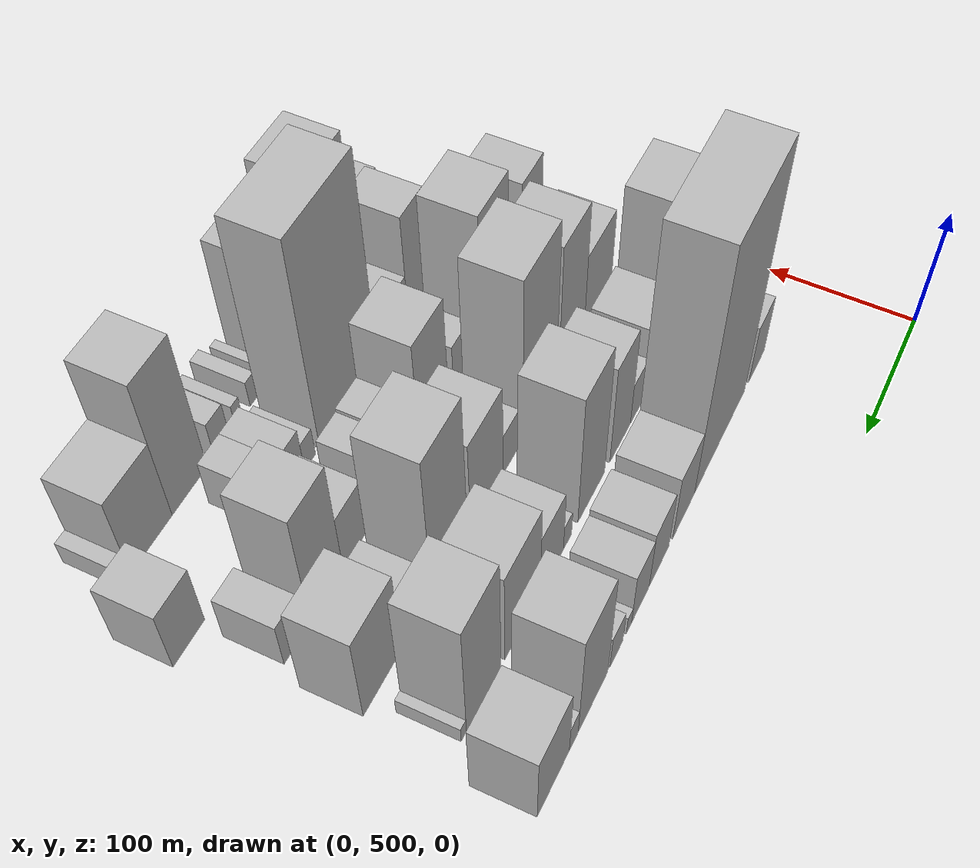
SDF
<sdf version="1.6">
 <world name="default">
  <model name="building_40">
   <static>1</static>
   <pose>100.0000 580.8331 0 0.000000 0.000000 0.000000</pose>
   <link name="link">
    <pose>0 0 27.00 0 0 0</pose>
    <collision name="collision"><geometry><box><size>40.0000 28.0786 54.0000</size></box></geometry></collision>
    <visual name="visual">
     <cast_shadows>0</cast_shadows>
     <geometry><box><size>40.0000 28.0786 54.0000</size></box></geometry>
     <material>
      <script>
       <uri>model://HANNAS_wall/materials/scripts</uri>
       <uri>model://HANNAS_wall/materials/textures</uri>
       <name>vrc/HANNAS_wall</name>
      </script>
     </material>
    </visual>
   </link>
  </model>
  <model name="building_41">
   <static>1</static>
   <pose>100.0000 645.3778 0 0.000000 0.000000 0.000000</pose>
   <link name="link">
    <pose>0 0 111.00 0 0 0</pose>
    <collision name="collision"><geometry><box><size>40.0000 85.0107 222.0000</size></box></geometry></collision>
    <visual name="visual">
     <cast_shadows>0</cast_shadows>
     <geometry><box><size>40.0000 85.0107 222.0000</size></box></geometry>
     <material>
      <script>
       <uri>model://HANNAS_wall/materials/scripts</uri>
       <uri>model://HANNAS_wall/materials/textures</uri>
       <name>vrc/HANNAS_wall</name>
      </script>
     </material>
    </visual>
   </link>
  </model>
  <model name="building_42">
   <static>1</static>
   <pose>100.0000 705.2268 0 0.000000 0.000000 0.000000</pose>
   <link name="link">
    <pose>0 0 31.50 0 0 0</pose>
    <collision name="collision"><geometry><box><size>40.0000 34.6874 63.0000</size></box></geometry></collision>
    <visual name="visual">
     <cast_shadows>0</cast_shadows>
     <geometry><box><size>40.0000 34.6874 63.0000</size></box></geometry>
     <material>
      <script>
       <uri>model://HANNAS_wall/materials/scripts</uri>
       <uri>model://HANNAS_wall/materials/textures</uri>
       <name>vrc/HANNAS_wall</name>
      </script>
     </material>
    </visual>
   </link>
  </model>
  <model name="building_43">
   <static>1</static>
   <pose>100.0000 743.5656 0 0.000000 0.000000 0.000000</pose>
   <link name="link">
    <pose>0 0 28.50 0 0 0</pose>
    <collision name="collision"><geometry><box><size>40.0000 29.9901 57.0000</size></box></geometry></collision>
    <visual name="visual">
     <cast_shadows>0</cast_shadows>
     <geometry><box><size>40.0000 29.9901 57.0000</size></box></geometry>
     <material>
      <script>
       <uri>model://HANNAS_wall/materials/scripts</uri>
       <uri>model://HANNAS_wall/materials/textures</uri>
       <name>vrc/HANNAS_wall</name>
      </script>
     </material>
    </visual>
   </link>
  </model>
  <model name="building_44">
   <static>1</static>
   <pose>100.0000 771.5494 0 0.000000 0.000000 0.000000</pose>
   <link name="link">
    <pose>0 0 25.50 0 0 0</pose>
    <collision name="collision"><geometry><box><size>40.0000 25.9776 51.0000</size></box></geometry></collision>
    <visual name="visual">
     <cast_shadows>0</cast_shadows>
     <geometry><box><size>40.0000 25.9776 51.0000</size></box></geometry>
     <material>
      <script>
       <uri>model://HANNAS_wall/materials/scripts</uri>
       <uri>model://HANNAS_wall/materials/textures</uri>
       <name>vrc/HANNAS_wall</name>
      </script>
     </material>
    </visual>
   </link>
  </model>
  <model name="building_45">
   <static>1</static>
   <pose>100.0000 788.2415 0 0.000000 0.000000 0.000000</pose>
   <link name="link">
    <pose>0 0 9.00 0 0 0</pose>
    <collision name="collision"><geometry><box><size>40.0000 7.4066 18.0000</size></box></geometry></collision>
    <visual name="visual">
     <cast_shadows>0</cast_shadows>
     <geometry><box><size>40.0000 7.4066 18.0000</size></box></geometry>
     <material>
      <script>
       <uri>model://HANNAS_wall/materials/scripts</uri>
       <uri>model://HANNAS_wall/materials/textures</uri>
       <name>vrc/HANNAS_wall</name>
      </script>
     </material>
    </visual>
   </link>
  </model>
  <model name="building_46">
   <static>1</static>
   <pose>100.0000 806.1011 0 0.000000 0.000000 0.000000</pose>
   <link name="link">
    <pose>0 0 16.50 0 0 0</pose>
    <collision name="collision"><geometry><box><size>40.0000 18.3126 33.0000</size></box></geometry></collision>
    <visual name="visual">
     <cast_shadows>0</cast_shadows>
     <geometry><box><size>40.0000 18.3126 33.0000</size></box></geometry>
     <material>
      <script>
       <uri>model://HANNAS_wall/materials/scripts</uri>
       <uri>model://HANNAS_wall/materials/textures</uri>
       <name>vrc/HANNAS_wall</name>
      </script>
     </material>
    </visual>
   </link>
  </model>
  <model name="building_47">
   <static>1</static>
   <pose>100.0000 838.3187 0 0.000000 0.000000 0.000000</pose>
   <link name="link">
    <pose>0 0 52.50 0 0 0</pose>
    <collision name="collision"><geometry><box><size>40.0000 40.1227 105.0000</size></box></geometry></collision>
    <visual name="visual">
     <cast_shadows>0</cast_shadows>
     <geometry><box><size>40.0000 40.1227 105.0000</size></box></geometry>
     <material>
      <script>
       <uri>model://HANNAS_wall/materials/scripts</uri>
       <uri>model://HANNAS_wall/materials/textures</uri>
       <name>vrc/HANNAS_wall</name>
      </script>
     </material>
    </visual>
   </link>
  </model>
  <model name="building_48">
   <static>1</static>
   <pose>100.0000 864.2418 0 0.000000 0.000000 0.000000</pose>
   <link name="link">
    <pose>0 0 13.50 0 0 0</pose>
    <collision name="collision"><geometry><box><size>40.0000 11.7236 27.0000</size></box></geometry></collision>
    <visual name="visual">
     <cast_shadows>0</cast_shadows>
     <geometry><box><size>40.0000 11.7236 27.0000</size></box></geometry>
     <material>
      <script>
       <uri>model://HANNAS_wall/materials/scripts</uri>
       <uri>model://HANNAS_wall/materials/textures</uri>
       <name>vrc/HANNAS_wall</name>
      </script>
     </material>
    </visual>
   </link>
  </model>
  <model name="building_49">
   <static>1</static>
   <pose>100.0000 890.5071 0 0.000000 0.000000 0.000000</pose>
   <link name="link">
    <pose>0 0 34.50 0 0 0</pose>
    <collision name="collision"><geometry><box><size>40.0000 40.8070 69.0000</size></box></geometry></collision>
    <visual name="visual">
     <cast_shadows>0</cast_shadows>
     <geometry><box><size>40.0000 40.8070 69.0000</size></box></geometry>
     <material>
      <script>
       <uri>model://HANNAS_wall/materials/scripts</uri>
       <uri>model://HANNAS_wall/materials/textures</uri>
       <name>vrc/HANNAS_wall</name>
      </script>
     </material>
    </visual>
   </link>
  </model>
  <model name="building_91">
   <static>1</static>
   <pose>155.0000 570.8298 0 0.000000 0.000000 0.000000</pose>
   <link name="link">
    <pose>0 0 66.00 0 0 0</pose>
    <collision name="collision"><geometry><box><size>40.0000 43.2031 132.0000</size></box></geometry></collision>
    <visual name="visual">
     <cast_shadows>0</cast_shadows>
     <geometry><box><size>40.0000 43.2031 132.0000</size></box></geometry>
     <material>
      <script>
       <uri>model://HANNAS_wall/materials/scripts</uri>
       <uri>model://HANNAS_wall/materials/textures</uri>
       <name>vrc/HANNAS_wall</name>
      </script>
     </material>
    </visual>
   </link>
  </model>
  <model name="building_92">
   <static>1</static>
   <pose>155.0000 615.0993 0 0.000000 0.000000 0.000000</pose>
   <link name="link">
    <pose>0 0 33.00 0 0 0</pose>
    <collision name="collision"><geometry><box><size>40.0000 37.3359 66.0000</size></box></geometry></collision>
    <visual name="visual">
     <cast_shadows>0</cast_shadows>
     <geometry><box><size>40.0000 37.3359 66.0000</size></box></geometry>
     <material>
      <script>
       <uri>model://HANNAS_wall/materials/scripts</uri>
       <uri>model://HANNAS_wall/materials/textures</uri>
       <name>vrc/HANNAS_wall</name>
      </script>
     </material>
    </visual>
   </link>
  </model>
  <model name="building_93">
   <static>1</static>
   <pose>155.0000 645.3813 0 0.000000 0.000000 0.000000</pose>
   <link name="link">
    <pose>0 0 19.50 0 0 0</pose>
    <collision name="collision"><geometry><box><size>40.0000 23.2282 39.0000</size></box></geometry></collision>
    <visual name="visual">
     <cast_shadows>0</cast_shadows>
     <geometry><box><size>40.0000 23.2282 39.0000</size></box></geometry>
     <material>
      <script>
       <uri>model://HANNAS_wall/materials/scripts</uri>
       <uri>model://HANNAS_wall/materials/textures</uri>
       <name>vrc/HANNAS_wall</name>
      </script>
     </material>
    </visual>
   </link>
  </model>
  <model name="building_94">
   <static>1</static>
   <pose>155.0000 672.9916 0 0.000000 0.000000 0.000000</pose>
   <link name="link">
    <pose>0 0 46.50 0 0 0</pose>
    <collision name="collision"><geometry><box><size>40.0000 31.9923 93.0000</size></box></geometry></collision>
    <visual name="visual">
     <cast_shadows>0</cast_shadows>
     <geometry><box><size>40.0000 31.9923 93.0000</size></box></geometry>
     <material>
      <script>
       <uri>model://HANNAS_wall/materials/scripts</uri>
       <uri>model://HANNAS_wall/materials/textures</uri>
       <name>vrc/HANNAS_wall</name>
      </script>
     </material>
    </visual>
   </link>
  </model>
  <model name="building_95">
   <static>1</static>
   <pose>155.0000 716.8056 0 0.000000 0.000000 0.000000</pose>
   <link name="link">
    <pose>0 0 61.50 0 0 0</pose>
    <collision name="collision"><geometry><box><size>40.0000 39.6357 123.0000</size></box></geometry></collision>
    <visual name="visual">
     <cast_shadows>0</cast_shadows>
     <geometry><box><size>40.0000 39.6357 123.0000</size></box></geometry>
     <material>
      <script>
       <uri>model://HANNAS_wall/materials/scripts</uri>
       <uri>model://HANNAS_wall/materials/textures</uri>
       <name>vrc/HANNAS_wall</name>
      </script>
     </material>
    </visual>
   </link>
  </model>
  <model name="building_96">
   <static>1</static>
   <pose>155.0000 751.3839 0 0.000000 0.000000 0.000000</pose>
   <link name="link">
    <pose>0 0 12.00 0 0 0</pose>
    <collision name="collision"><geometry><box><size>40.0000 11.5209 24.0000</size></box></geometry></collision>
    <visual name="visual">
     <cast_shadows>0</cast_shadows>
     <geometry><box><size>40.0000 11.5209 24.0000</size></box></geometry>
     <material>
      <script>
       <uri>model://HANNAS_wall/materials/scripts</uri>
       <uri>model://HANNAS_wall/materials/textures</uri>
       <name>vrc/HANNAS_wall</name>
      </script>
     </material>
    </visual>
   </link>
  </model>
  <model name="building_97">
   <static>1</static>
   <pose>155.0000 773.3418 0 0.000000 0.000000 0.000000</pose>
   <link name="link">
    <pose>0 0 30.00 0 0 0</pose>
    <collision name="collision"><geometry><box><size>40.0000 32.3949 60.0000</size></box></geometry></collision>
    <visual name="visual">
     <cast_shadows>0</cast_shadows>
     <geometry><box><size>40.0000 32.3949 60.0000</size></box></geometry>
     <material>
      <script>
       <uri>model://HANNAS_wall/materials/scripts</uri>
       <uri>model://HANNAS_wall/materials/textures</uri>
       <name>vrc/HANNAS_wall</name>
      </script>
     </material>
    </visual>
   </link>
  </model>
  <model name="building_98">
   <static>1</static>
   <pose>155.0000 812.8300 0 0.000000 0.000000 0.000000</pose>
   <link name="link">
    <pose>0 0 45.00 0 0 0</pose>
    <collision name="collision"><geometry><box><size>40.0000 46.5817 90.0000</size></box></geometry></collision>
    <visual name="visual">
     <cast_shadows>0</cast_shadows>
     <geometry><box><size>40.0000 46.5817 90.0000</size></box></geometry>
     <material>
      <script>
       <uri>model://HANNAS_wall/materials/scripts</uri>
       <uri>model://HANNAS_wall/materials/textures</uri>
       <name>vrc/HANNAS_wall</name>
      </script>
     </material>
    </visual>
   </link>
  </model>
  <model name="building_99">
   <static>1</static>
   <pose>155.0000 862.5686 0 0.000000 0.000000 0.000000</pose>
   <link name="link">
    <pose>0 0 57.00 0 0 0</pose>
    <collision name="collision"><geometry><box><size>40.0000 42.8955 114.0000</size></box></geometry></collision>
    <visual name="visual">
     <cast_shadows>0</cast_shadows>
     <geometry><box><size>40.0000 42.8955 114.0000</size></box></geometry>
     <material>
      <script>
       <uri>model://HANNAS_wall/materials/scripts</uri>
       <uri>model://HANNAS_wall/materials/textures</uri>
       <name>vrc/HANNAS_wall</name>
      </script>
     </material>
    </visual>
   </link>
  </model>
  <model name="building_100">
   <static>1</static>
   <pose>155.0000 887.2083 0 0.000000 0.000000 0.000000</pose>
   <link name="link">
    <pose>0 0 7.50 0 0 0</pose>
    <collision name="collision"><geometry><box><size>40.0000 6.3840 15.0000</size></box></geometry></collision>
    <visual name="visual">
     <cast_shadows>0</cast_shadows>
     <geometry><box><size>40.0000 6.3840 15.0000</size></box></geometry>
     <material>
      <script>
       <uri>model://HANNAS_wall/materials/scripts</uri>
       <uri>model://HANNAS_wall/materials/textures</uri>
       <name>vrc/HANNAS_wall</name>
      </script>
     </material>
    </visual>
   </link>
  </model>
  <model name="building_141">
   <static>1</static>
   <pose>210.0000 582.8501 0 0.000000 0.000000 0.000000</pose>
   <link name="link">
    <pose>0 0 37.50 0 0 0</pose>
    <collision name="collision"><geometry><box><size>40.0000 43.6741 75.0000</size></box></geometry></collision>
    <visual name="visual">
     <cast_shadows>0</cast_shadows>
     <geometry><box><size>40.0000 43.6741 75.0000</size></box></geometry>
     <material>
      <script>
       <uri>model://HANNAS_wall/materials/scripts</uri>
       <uri>model://HANNAS_wall/materials/textures</uri>
       <name>vrc/HANNAS_wall</name>
      </script>
     </material>
    </visual>
   </link>
  </model>
  <model name="building_142">
   <static>1</static>
   <pose>210.0000 624.2639 0 0.000000 0.000000 0.000000</pose>
   <link name="link">
    <pose>0 0 61.50 0 0 0</pose>
    <collision name="collision"><geometry><box><size>40.0000 39.1534 123.0000</size></box></geometry></collision>
    <visual name="visual">
     <cast_shadows>0</cast_shadows>
     <geometry><box><size>40.0000 39.1534 123.0000</size></box></geometry>
     <material>
      <script>
       <uri>model://HANNAS_wall/materials/scripts</uri>
       <uri>model://HANNAS_wall/materials/textures</uri>
       <name>vrc/HANNAS_wall</name>
      </script>
     </material>
    </visual>
   </link>
  </model>
  <model name="building_143">
   <static>1</static>
   <pose>210.0000 672.5170 0 0.000000 0.000000 0.000000</pose>
   <link name="link">
    <pose>0 0 75.00 0 0 0</pose>
    <collision name="collision"><geometry><box><size>40.0000 49.3529 150.0000</size></box></geometry></collision>
    <visual name="visual">
     <cast_shadows>0</cast_shadows>
     <geometry><box><size>40.0000 49.3529 150.0000</size></box></geometry>
     <material>
      <script>
       <uri>model://HANNAS_wall/materials/scripts</uri>
       <uri>model://HANNAS_wall/materials/textures</uri>
       <name>vrc/HANNAS_wall</name>
      </script>
     </material>
    </visual>
   </link>
  </model>
  <model name="building_144">
   <static>1</static>
   <pose>210.0000 713.4249 0 0.000000 0.000000 0.000000</pose>
   <link name="link">
    <pose>0 0 19.50 0 0 0</pose>
    <collision name="collision"><geometry><box><size>40.0000 22.4629 39.0000</size></box></geometry></collision>
    <visual name="visual">
     <cast_shadows>0</cast_shadows>
     <geometry><box><size>40.0000 22.4629 39.0000</size></box></geometry>
     <material>
      <script>
       <uri>model://HANNAS_wall/materials/scripts</uri>
       <uri>model://HANNAS_wall/materials/textures</uri>
       <name>vrc/HANNAS_wall</name>
      </script>
     </material>
    </visual>
   </link>
  </model>
  <model name="building_145">
   <static>1</static>
   <pose>210.0000 746.7091 0 0.000000 0.000000 0.000000</pose>
   <link name="link">
    <pose>0 0 43.50 0 0 0</pose>
    <collision name="collision"><geometry><box><size>40.0000 44.1055 87.0000</size></box></geometry></collision>
    <visual name="visual">
     <cast_shadows>0</cast_shadows>
     <geometry><box><size>40.0000 44.1055 87.0000</size></box></geometry>
     <material>
      <script>
       <uri>model://HANNAS_wall/materials/scripts</uri>
       <uri>model://HANNAS_wall/materials/textures</uri>
       <name>vrc/HANNAS_wall</name>
      </script>
     </material>
    </visual>
   </link>
  </model>
  <model name="building_146">
   <static>1</static>
   <pose>210.0000 795.7113 0 0.000000 0.000000 0.000000</pose>
   <link name="link">
    <pose>0 0 69.00 0 0 0</pose>
    <collision name="collision"><geometry><box><size>40.0000 45.8988 138.0000</size></box></geometry></collision>
    <visual name="visual">
     <cast_shadows>0</cast_shadows>
     <geometry><box><size>40.0000 45.8988 138.0000</size></box></geometry>
     <material>
      <script>
       <uri>model://HANNAS_wall/materials/scripts</uri>
       <uri>model://HANNAS_wall/materials/textures</uri>
       <name>vrc/HANNAS_wall</name>
      </script>
     </material>
    </visual>
   </link>
  </model>
  <model name="building_147">
   <static>1</static>
   <pose>210.0000 821.7032 0 0.000000 0.000000 0.000000</pose>
   <link name="link">
    <pose>0 0 7.50 0 0 0</pose>
    <collision name="collision"><geometry><box><size>40.0000 6.0851 15.0000</size></box></geometry></collision>
    <visual name="visual">
     <cast_shadows>0</cast_shadows>
     <geometry><box><size>40.0000 6.0851 15.0000</size></box></geometry>
     <material>
      <script>
       <uri>model://HANNAS_wall/materials/scripts</uri>
       <uri>model://HANNAS_wall/materials/textures</uri>
       <name>vrc/HANNAS_wall</name>
      </script>
     </material>
    </visual>
   </link>
  </model>
  <model name="building_148">
   <static>1</static>
   <pose>210.0000 836.4265 0 0.000000 0.000000 0.000000</pose>
   <link name="link">
    <pose>0 0 22.50 0 0 0</pose>
    <collision name="collision"><geometry><box><size>40.0000 23.3614 45.0000</size></box></geometry></collision>
    <visual name="visual">
     <cast_shadows>0</cast_shadows>
     <geometry><box><size>40.0000 23.3614 45.0000</size></box></geometry>
     <material>
      <script>
       <uri>model://HANNAS_wall/materials/scripts</uri>
       <uri>model://HANNAS_wall/materials/textures</uri>
       <name>vrc/HANNAS_wall</name>
      </script>
     </material>
    </visual>
   </link>
  </model>
  <model name="building_149">
   <static>1</static>
   <pose>210.0000 878.2574 0 0.000000 0.000000 0.000000</pose>
   <link name="link">
    <pose>0 0 42.00 0 0 0</pose>
    <collision name="collision"><geometry><box><size>40.0000 44.3004 84.0000</size></box></geometry></collision>
    <visual name="visual">
     <cast_shadows>0</cast_shadows>
     <geometry><box><size>40.0000 44.3004 84.0000</size></box></geometry>
     <material>
      <script>
       <uri>model://HANNAS_wall/materials/scripts</uri>
       <uri>model://HANNAS_wall/materials/textures</uri>
       <name>vrc/HANNAS_wall</name>
      </script>
     </material>
    </visual>
   </link>
  </model>
  <model name="building_195">
   <static>1</static>
   <pose>265.0000 567.5755 0 0.000000 0.000000 0.000000</pose>
   <link name="link">
    <pose>0 0 46.50 0 0 0</pose>
    <collision name="collision"><geometry><box><size>40.0000 30.4717 93.0000</size></box></geometry></collision>
    <visual name="visual">
     <cast_shadows>0</cast_shadows>
     <geometry><box><size>40.0000 30.4717 93.0000</size></box></geometry>
     <material>
      <script>
       <uri>model://HANNAS_wall/materials/scripts</uri>
       <uri>model://HANNAS_wall/materials/textures</uri>
       <name>vrc/HANNAS_wall</name>
      </script>
     </material>
    </visual>
   </link>
  </model>
  <model name="building_196">
   <static>1</static>
   <pose>265.0000 592.5957 0 0.000000 0.000000 0.000000</pose>
   <link name="link">
    <pose>0 0 19.50 0 0 0</pose>
    <collision name="collision"><geometry><box><size>40.0000 19.5686 39.0000</size></box></geometry></collision>
    <visual name="visual">
     <cast_shadows>0</cast_shadows>
     <geometry><box><size>40.0000 19.5686 39.0000</size></box></geometry>
     <material>
      <script>
       <uri>model://HANNAS_wall/materials/scripts</uri>
       <uri>model://HANNAS_wall/materials/textures</uri>
       <name>vrc/HANNAS_wall</name>
      </script>
     </material>
    </visual>
   </link>
  </model>
  <model name="building_197">
   <static>1</static>
   <pose>265.0000 623.0899 0 0.000000 0.000000 0.000000</pose>
   <link name="link">
    <pose>0 0 61.50 0 0 0</pose>
    <collision name="collision"><geometry><box><size>40.0000 41.4199 123.0000</size></box></geometry></collision>
    <visual name="visual">
     <cast_shadows>0</cast_shadows>
     <geometry><box><size>40.0000 41.4199 123.0000</size></box></geometry>
     <material>
      <script>
       <uri>model://HANNAS_wall/materials/scripts</uri>
       <uri>model://HANNAS_wall/materials/textures</uri>
       <name>vrc/HANNAS_wall</name>
      </script>
     </material>
    </visual>
   </link>
  </model>
  <model name="building_198">
   <static>1</static>
   <pose>265.0000 654.8393 0 0.000000 0.000000 0.000000</pose>
   <link name="link">
    <pose>0 0 9.00 0 0 0</pose>
    <collision name="collision"><geometry><box><size>40.0000 8.0788 18.0000</size></box></geometry></collision>
    <visual name="visual">
     <cast_shadows>0</cast_shadows>
     <geometry><box><size>40.0000 8.0788 18.0000</size></box></geometry>
     <material>
      <script>
       <uri>model://HANNAS_wall/materials/scripts</uri>
       <uri>model://HANNAS_wall/materials/textures</uri>
       <name>vrc/HANNAS_wall</name>
      </script>
     </material>
    </visual>
   </link>
  </model>
  <model name="building_199">
   <static>1</static>
   <pose>265.0000 670.7340 0 0.000000 0.000000 0.000000</pose>
   <link name="link">
    <pose>0 0 22.50 0 0 0</pose>
    <collision name="collision"><geometry><box><size>40.0000 23.7106 45.0000</size></box></geometry></collision>
    <visual name="visual">
     <cast_shadows>0</cast_shadows>
     <geometry><box><size>40.0000 23.7106 45.0000</size></box></geometry>
     <material>
      <script>
       <uri>model://HANNAS_wall/materials/scripts</uri>
       <uri>model://HANNAS_wall/materials/textures</uri>
       <name>vrc/HANNAS_wall</name>
      </script>
     </material>
    </visual>
   </link>
  </model>
  <model name="building_200">
   <static>1</static>
   <pose>265.0000 709.1724 0 0.000000 0.000000 0.000000</pose>
   <link name="link">
    <pose>0 0 49.50 0 0 0</pose>
    <collision name="collision"><geometry><box><size>40.0000 39.1662 99.0000</size></box></geometry></collision>
    <visual name="visual">
     <cast_shadows>0</cast_shadows>
     <geometry><box><size>40.0000 39.1662 99.0000</size></box></geometry>
     <material>
      <script>
       <uri>model://HANNAS_wall/materials/scripts</uri>
       <uri>model://HANNAS_wall/materials/textures</uri>
       <name>vrc/HANNAS_wall</name>
      </script>
     </material>
    </visual>
   </link>
  </model>
  <model name="building_201">
   <static>1</static>
   <pose>265.0000 741.5231 0 0.000000 0.000000 0.000000</pose>
   <link name="link">
    <pose>0 0 24.00 0 0 0</pose>
    <collision name="collision"><geometry><box><size>40.0000 25.5353 48.0000</size></box></geometry></collision>
    <visual name="visual">
     <cast_shadows>0</cast_shadows>
     <geometry><box><size>40.0000 25.5353 48.0000</size></box></geometry>
     <material>
      <script>
       <uri>model://HANNAS_wall/materials/scripts</uri>
       <uri>model://HANNAS_wall/materials/textures</uri>
       <name>vrc/HANNAS_wall</name>
      </script>
     </material>
    </visual>
   </link>
  </model>
  <model name="building_202">
   <static>1</static>
   <pose>265.0000 766.0044 0 0.000000 0.000000 0.000000</pose>
   <link name="link">
    <pose>0 0 22.50 0 0 0</pose>
    <collision name="collision"><geometry><box><size>40.0000 23.4273 45.0000</size></box></geometry></collision>
    <visual name="visual">
     <cast_shadows>0</cast_shadows>
     <geometry><box><size>40.0000 23.4273 45.0000</size></box></geometry>
     <material>
      <script>
       <uri>model://HANNAS_wall/materials/scripts</uri>
       <uri>model://HANNAS_wall/materials/textures</uri>
       <name>vrc/HANNAS_wall</name>
      </script>
     </material>
    </visual>
   </link>
  </model>
  <model name="building_203">
   <static>1</static>
   <pose>265.0000 786.3931 0 0.000000 0.000000 0.000000</pose>
   <link name="link">
    <pose>0 0 9.00 0 0 0</pose>
    <collision name="collision"><geometry><box><size>40.0000 7.3501 18.0000</size></box></geometry></collision>
    <visual name="visual">
     <cast_shadows>0</cast_shadows>
     <geometry><box><size>40.0000 7.3501 18.0000</size></box></geometry>
     <material>
      <script>
       <uri>model://HANNAS_wall/materials/scripts</uri>
       <uri>model://HANNAS_wall/materials/textures</uri>
       <name>vrc/HANNAS_wall</name>
      </script>
     </material>
    </visual>
   </link>
  </model>
  <model name="building_204">
   <static>1</static>
   <pose>265.0000 809.8881 0 0.000000 0.000000 0.000000</pose>
   <link name="link">
    <pose>0 0 27.00 0 0 0</pose>
    <collision name="collision"><geometry><box><size>40.0000 29.6398 54.0000</size></box></geometry></collision>
    <visual name="visual">
     <cast_shadows>0</cast_shadows>
     <geometry><box><size>40.0000 29.6398 54.0000</size></box></geometry>
     <material>
      <script>
       <uri>model://HANNAS_wall/materials/scripts</uri>
       <uri>model://HANNAS_wall/materials/textures</uri>
       <name>vrc/HANNAS_wall</name>
      </script>
     </material>
    </visual>
   </link>
  </model>
  <model name="building_205">
   <static>1</static>
   <pose>265.0000 843.8061 0 0.000000 0.000000 0.000000</pose>
   <link name="link">
    <pose>0 0 54.00 0 0 0</pose>
    <collision name="collision"><geometry><box><size>40.0000 38.1962 108.0000</size></box></geometry></collision>
    <visual name="visual">
     <cast_shadows>0</cast_shadows>
     <geometry><box><size>40.0000 38.1962 108.0000</size></box></geometry>
     <material>
      <script>
       <uri>model://HANNAS_wall/materials/scripts</uri>
       <uri>model://HANNAS_wall/materials/textures</uri>
       <name>vrc/HANNAS_wall</name>
      </script>
     </material>
    </visual>
   </link>
  </model>
  <model name="building_206">
   <static>1</static>
   <pose>265.0000 880.4799 0 0.000000 0.000000 0.000000</pose>
   <link name="link">
    <pose>0 0 21.00 0 0 0</pose>
    <collision name="collision"><geometry><box><size>40.0000 23.1514 42.0000</size></box></geometry></collision>
    <visual name="visual">
     <cast_shadows>0</cast_shadows>
     <geometry><box><size>40.0000 23.1514 42.0000</size></box></geometry>
     <material>
      <script>
       <uri>model://HANNAS_wall/materials/scripts</uri>
       <uri>model://HANNAS_wall/materials/textures</uri>
       <name>vrc/HANNAS_wall</name>
      </script>
     </material>
    </visual>
   </link>
  </model>
  <model name="building_249">
   <static>1</static>
   <pose>320.0000 574.2670 0 0.000000 0.000000 0.000000</pose>
   <link name="link">
    <pose>0 0 16.50 0 0 0</pose>
    <collision name="collision"><geometry><box><size>40.0000 19.6221 33.0000</size></box></geometry></collision>
    <visual name="visual">
     <cast_shadows>0</cast_shadows>
     <geometry><box><size>40.0000 19.6221 33.0000</size></box></geometry>
     <material>
      <script>
       <uri>model://HANNAS_wall/materials/scripts</uri>
       <uri>model://HANNAS_wall/materials/textures</uri>
       <name>vrc/HANNAS_wall</name>
      </script>
     </material>
    </visual>
   </link>
  </model>
  <model name="building_250">
   <static>1</static>
   <pose>320.0000 591.8122 0 0.000000 0.000000 0.000000</pose>
   <link name="link">
    <pose>0 0 9.00 0 0 0</pose>
    <collision name="collision"><geometry><box><size>40.0000 7.4682 18.0000</size></box></geometry></collision>
    <visual name="visual">
     <cast_shadows>0</cast_shadows>
     <geometry><box><size>40.0000 7.4682 18.0000</size></box></geometry>
     <material>
      <script>
       <uri>model://HANNAS_wall/materials/scripts</uri>
       <uri>model://HANNAS_wall/materials/textures</uri>
       <name>vrc/HANNAS_wall</name>
      </script>
     </material>
    </visual>
   </link>
  </model>
  <model name="building_251">
   <static>1</static>
   <pose>320.0000 599.1433 0 0.000000 0.000000 0.000000</pose>
   <link name="link">
    <pose>0 0 7.50 0 0 0</pose>
    <collision name="collision"><geometry><box><size>40.0000 7.1939 15.0000</size></box></geometry></collision>
    <visual name="visual">
     <cast_shadows>0</cast_shadows>
     <geometry><box><size>40.0000 7.1939 15.0000</size></box></geometry>
     <material>
      <script>
       <uri>model://HANNAS_wall/materials/scripts</uri>
       <uri>model://HANNAS_wall/materials/textures</uri>
       <name>vrc/HANNAS_wall</name>
      </script>
     </material>
    </visual>
   </link>
  </model>
  <model name="building_252">
   <static>1</static>
   <pose>320.0000 625.4387 0 0.000000 0.000000 0.000000</pose>
   <link name="link">
    <pose>0 0 46.50 0 0 0</pose>
    <collision name="collision"><geometry><box><size>40.0000 29.3971 93.0000</size></box></geometry></collision>
    <visual name="visual">
     <cast_shadows>0</cast_shadows>
     <geometry><box><size>40.0000 29.3971 93.0000</size></box></geometry>
     <material>
      <script>
       <uri>model://HANNAS_wall/materials/scripts</uri>
       <uri>model://HANNAS_wall/materials/textures</uri>
       <name>vrc/HANNAS_wall</name>
      </script>
     </material>
    </visual>
   </link>
  </model>
  <model name="building_253">
   <static>1</static>
   <pose>320.0000 650.6448 0 0.000000 0.000000 0.000000</pose>
   <link name="link">
    <pose>0 0 19.50 0 0 0</pose>
    <collision name="collision"><geometry><box><size>40.0000 21.0151 39.0000</size></box></geometry></collision>
    <visual name="visual">
     <cast_shadows>0</cast_shadows>
     <geometry><box><size>40.0000 21.0151 39.0000</size></box></geometry>
     <material>
      <script>
       <uri>model://HANNAS_wall/materials/scripts</uri>
       <uri>model://HANNAS_wall/materials/textures</uri>
       <name>vrc/HANNAS_wall</name>
      </script>
     </material>
    </visual>
   </link>
  </model>
  <model name="building_254">
   <static>1</static>
   <pose>320.0000 666.0804 0 0.000000 0.000000 0.000000</pose>
   <link name="link">
    <pose>0 0 10.50 0 0 0</pose>
    <collision name="collision"><geometry><box><size>40.0000 9.8560 21.0000</size></box></geometry></collision>
    <visual name="visual">
     <cast_shadows>0</cast_shadows>
     <geometry><box><size>40.0000 9.8560 21.0000</size></box></geometry>
     <material>
      <script>
       <uri>model://HANNAS_wall/materials/scripts</uri>
       <uri>model://HANNAS_wall/materials/textures</uri>
       <name>vrc/HANNAS_wall</name>
      </script>
     </material>
    </visual>
   </link>
  </model>
  <model name="building_255">
   <static>1</static>
   <pose>320.0000 676.4207 0 0.000000 0.000000 0.000000</pose>
   <link name="link">
    <pose>0 0 13.50 0 0 0</pose>
    <collision name="collision"><geometry><box><size>40.0000 10.8247 27.0000</size></box></geometry></collision>
    <visual name="visual">
     <cast_shadows>0</cast_shadows>
     <geometry><box><size>40.0000 10.8247 27.0000</size></box></geometry>
     <material>
      <script>
       <uri>model://HANNAS_wall/materials/scripts</uri>
       <uri>model://HANNAS_wall/materials/textures</uri>
       <name>vrc/HANNAS_wall</name>
      </script>
     </material>
    </visual>
   </link>
  </model>
  <model name="building_256">
   <static>1</static>
   <pose>320.0000 719.0720 0 0.000000 0.000000 0.000000</pose>
   <link name="link">
    <pose>0 0 94.50 0 0 0</pose>
    <collision name="collision"><geometry><box><size>40.0000 74.4778 189.0000</size></box></geometry></collision>
    <visual name="visual">
     <cast_shadows>0</cast_shadows>
     <geometry><box><size>40.0000 74.4778 189.0000</size></box></geometry>
     <material>
      <script>
       <uri>model://HANNAS_wall/materials/scripts</uri>
       <uri>model://HANNAS_wall/materials/textures</uri>
       <name>vrc/HANNAS_wall</name>
      </script>
     </material>
    </visual>
   </link>
  </model>
  <model name="building_257">
   <static>1</static>
   <pose>320.0000 767.9239 0 0.000000 0.000000 0.000000</pose>
   <link name="link">
    <pose>0 0 13.50 0 0 0</pose>
    <collision name="collision"><geometry><box><size>40.0000 13.2261 27.0000</size></box></geometry></collision>
    <visual name="visual">
     <cast_shadows>0</cast_shadows>
     <geometry><box><size>40.0000 13.2261 27.0000</size></box></geometry>
     <material>
      <script>
       <uri>model://HANNAS_wall/materials/scripts</uri>
       <uri>model://HANNAS_wall/materials/textures</uri>
       <name>vrc/HANNAS_wall</name>
      </script>
     </material>
    </visual>
   </link>
  </model>
  <model name="building_258">
   <static>1</static>
   <pose>320.0000 785.2549 0 0.000000 0.000000 0.000000</pose>
   <link name="link">
    <pose>0 0 21.00 0 0 0</pose>
    <collision name="collision"><geometry><box><size>40.0000 21.4359 42.0000</size></box></geometry></collision>
    <visual name="visual">
     <cast_shadows>0</cast_shadows>
     <geometry><box><size>40.0000 21.4359 42.0000</size></box></geometry>
     <material>
      <script>
       <uri>model://HANNAS_wall/materials/scripts</uri>
       <uri>model://HANNAS_wall/materials/textures</uri>
       <name>vrc/HANNAS_wall</name>
      </script>
     </material>
    </visual>
   </link>
  </model>
  <model name="building_259">
   <static>1</static>
   <pose>320.0000 807.8039 0 0.000000 0.000000 0.000000</pose>
   <link name="link">
    <pose>0 0 21.00 0 0 0</pose>
    <collision name="collision"><geometry><box><size>40.0000 23.6619 42.0000</size></box></geometry></collision>
    <visual name="visual">
     <cast_shadows>0</cast_shadows>
     <geometry><box><size>40.0000 23.6619 42.0000</size></box></geometry>
     <material>
      <script>
       <uri>model://HANNAS_wall/materials/scripts</uri>
       <uri>model://HANNAS_wall/materials/textures</uri>
       <name>vrc/HANNAS_wall</name>
      </script>
     </material>
    </visual>
   </link>
  </model>
  <model name="building_260">
   <static>1</static>
   <pose>320.0000 903.9747 0 0.000000 0.000000 0.000000</pose>
   <link name="link">
    <pose>0 0 28.50 0 0 0</pose>
    <collision name="collision"><geometry><box><size>40.0000 32.8933 57.0000</size></box></geometry></collision>
    <visual name="visual">
     <cast_shadows>0</cast_shadows>
     <geometry><box><size>40.0000 32.8933 57.0000</size></box></geometry>
     <material>
      <script>
       <uri>model://HANNAS_wall/materials/scripts</uri>
       <uri>model://HANNAS_wall/materials/textures</uri>
       <name>vrc/HANNAS_wall</name>
      </script>
     </material>
    </visual>
   </link>
  </model>
  <model name="building_308">
   <static>1</static>
   <pose>375.0000 591.2101 0 0.000000 0.000000 0.000000</pose>
   <link name="link">
    <pose>0 0 27.00 0 0 0</pose>
    <collision name="collision"><geometry><box><size>40.0000 29.7911 54.0000</size></box></geometry></collision>
    <visual name="visual">
     <cast_shadows>0</cast_shadows>
     <geometry><box><size>40.0000 29.7911 54.0000</size></box></geometry>
     <material>
      <script>
       <uri>model://HANNAS_wall/materials/scripts</uri>
       <uri>model://HANNAS_wall/materials/textures</uri>
       <name>vrc/HANNAS_wall</name>
      </script>
     </material>
    </visual>
   </link>
  </model>
  <model name="building_309">
   <static>1</static>
   <pose>375.0000 634.1476 0 0.000000 0.000000 0.000000</pose>
   <link name="link">
    <pose>0 0 58.50 0 0 0</pose>
    <collision name="collision"><geometry><box><size>40.0000 46.0838 117.0000</size></box></geometry></collision>
    <visual name="visual">
     <cast_shadows>0</cast_shadows>
     <geometry><box><size>40.0000 46.0838 117.0000</size></box></geometry>
     <material>
      <script>
       <uri>model://HANNAS_wall/materials/scripts</uri>
       <uri>model://HANNAS_wall/materials/textures</uri>
       <name>vrc/HANNAS_wall</name>
      </script>
     </material>
    </visual>
   </link>
  </model>
  <model name="building_310">
   <static>1</static>
   <pose>375.0000 667.0286 0 0.000000 0.000000 0.000000</pose>
   <link name="link">
    <pose>0 0 19.50 0 0 0</pose>
    <collision name="collision"><geometry><box><size>40.0000 19.6782 39.0000</size></box></geometry></collision>
    <visual name="visual">
     <cast_shadows>0</cast_shadows>
     <geometry><box><size>40.0000 19.6782 39.0000</size></box></geometry>
     <material>
      <script>
       <uri>model://HANNAS_wall/materials/scripts</uri>
       <uri>model://HANNAS_wall/materials/textures</uri>
       <name>vrc/HANNAS_wall</name>
      </script>
     </material>
    </visual>
   </link>
  </model>
  <model name="building_311">
   <static>1</static>
   <pose>375.0000 694.1485 0 0.000000 0.000000 0.000000</pose>
   <link name="link">
    <pose>0 0 49.50 0 0 0</pose>
    <collision name="collision"><geometry><box><size>40.0000 34.5617 99.0000</size></box></geometry></collision>
    <visual name="visual">
     <cast_shadows>0</cast_shadows>
     <geometry><box><size>40.0000 34.5617 99.0000</size></box></geometry>
     <material>
      <script>
       <uri>model://HANNAS_wall/materials/scripts</uri>
       <uri>model://HANNAS_wall/materials/textures</uri>
       <name>vrc/HANNAS_wall</name>
      </script>
     </material>
    </visual>
   </link>
  </model>
  <model name="building_312">
   <static>1</static>
   <pose>375.0000 723.8997 0 0.000000 0.000000 0.000000</pose>
   <link name="link">
    <pose>0 0 7.50 0 0 0</pose>
    <collision name="collision"><geometry><box><size>40.0000 6.9407 15.0000</size></box></geometry></collision>
    <visual name="visual">
     <cast_shadows>0</cast_shadows>
     <geometry><box><size>40.0000 6.9407 15.0000</size></box></geometry>
     <material>
      <script>
       <uri>model://HANNAS_wall/materials/scripts</uri>
       <uri>model://HANNAS_wall/materials/textures</uri>
       <name>vrc/HANNAS_wall</name>
      </script>
     </material>
    </visual>
   </link>
  </model>
  <model name="building_313">
   <static>1</static>
   <pose>375.0000 742.4946 0 0.000000 0.000000 0.000000</pose>
   <link name="link">
    <pose>0 0 12.00 0 0 0</pose>
    <collision name="collision"><geometry><box><size>40.0000 10.2492 24.0000</size></box></geometry></collision>
    <visual name="visual">
     <cast_shadows>0</cast_shadows>
     <geometry><box><size>40.0000 10.2492 24.0000</size></box></geometry>
     <material>
      <script>
       <uri>model://HANNAS_wall/materials/scripts</uri>
       <uri>model://HANNAS_wall/materials/textures</uri>
       <name>vrc/HANNAS_wall</name>
      </script>
     </material>
    </visual>
   </link>
  </model>
  <model name="building_314">
   <static>1</static>
   <pose>375.0000 760.9336 0 0.000000 0.000000 0.000000</pose>
   <link name="link">
    <pose>0 0 10.50 0 0 0</pose>
    <collision name="collision"><geometry><box><size>40.0000 8.6287 21.0000</size></box></geometry></collision>
    <visual name="visual">
     <cast_shadows>0</cast_shadows>
     <geometry><box><size>40.0000 8.6287 21.0000</size></box></geometry>
     <material>
      <script>
       <uri>model://HANNAS_wall/materials/scripts</uri>
       <uri>model://HANNAS_wall/materials/textures</uri>
       <name>vrc/HANNAS_wall</name>
      </script>
     </material>
    </visual>
   </link>
  </model>
  <model name="building_315">
   <static>1</static>
   <pose>375.0000 781.0300 0 0.000000 0.000000 0.000000</pose>
   <link name="link">
    <pose>0 0 16.50 0 0 0</pose>
    <collision name="collision"><geometry><box><size>40.0000 17.5642 33.0000</size></box></geometry></collision>
    <visual name="visual">
     <cast_shadows>0</cast_shadows>
     <geometry><box><size>40.0000 17.5642 33.0000</size></box></geometry>
     <material>
      <script>
       <uri>model://HANNAS_wall/materials/scripts</uri>
       <uri>model://HANNAS_wall/materials/textures</uri>
       <name>vrc/HANNAS_wall</name>
      </script>
     </material>
    </visual>
   </link>
  </model>
  <model name="building_316">
   <static>1</static>
   <pose>375.0000 817.1889 0 0.000000 0.000000 0.000000</pose>
   <link name="link">
    <pose>0 0 64.50 0 0 0</pose>
    <collision name="collision"><geometry><box><size>40.0000 38.7536 129.0000</size></box></geometry></collision>
    <visual name="visual">
     <cast_shadows>0</cast_shadows>
     <geometry><box><size>40.0000 38.7536 129.0000</size></box></geometry>
     <material>
      <script>
       <uri>model://HANNAS_wall/materials/scripts</uri>
       <uri>model://HANNAS_wall/materials/textures</uri>
       <name>vrc/HANNAS_wall</name>
      </script>
     </material>
    </visual>
   </link>
  </model>
  <model name="building_317">
   <static>1</static>
   <pose>375.0000 858.7097 0 0.000000 0.000000 0.000000</pose>
   <link name="link">
    <pose>0 0 37.50 0 0 0</pose>
    <collision name="collision"><geometry><box><size>40.0000 44.2880 75.0000</size></box></geometry></collision>
    <visual name="visual">
     <cast_shadows>0</cast_shadows>
     <geometry><box><size>40.0000 44.2880 75.0000</size></box></geometry>
     <material>
      <script>
       <uri>model://HANNAS_wall/materials/scripts</uri>
       <uri>model://HANNAS_wall/materials/textures</uri>
       <name>vrc/HANNAS_wall</name>
      </script>
     </material>
    </visual>
   </link>
  </model>
  <model name="building_318">
   <static>1</static>
   <pose>375.0000 886.0001 0 0.000000 0.000000 0.000000</pose>
   <link name="link">
    <pose>0 0 10.50 0 0 0</pose>
    <collision name="collision"><geometry><box><size>40.0000 10.2926 21.0000</size></box></geometry></collision>
    <visual name="visual">
     <cast_shadows>0</cast_shadows>
     <geometry><box><size>40.0000 10.2926 21.0000</size></box></geometry>
     <material>
      <script>
       <uri>model://HANNAS_wall/materials/scripts</uri>
       <uri>model://HANNAS_wall/materials/textures</uri>
       <name>vrc/HANNAS_wall</name>
      </script>
     </material>
    </visual>
   </link>
  </model>
 </world>
</sdf>
